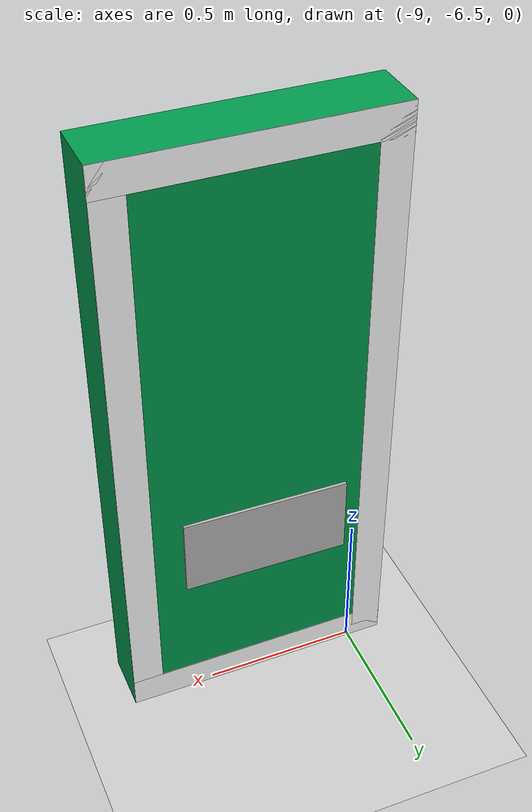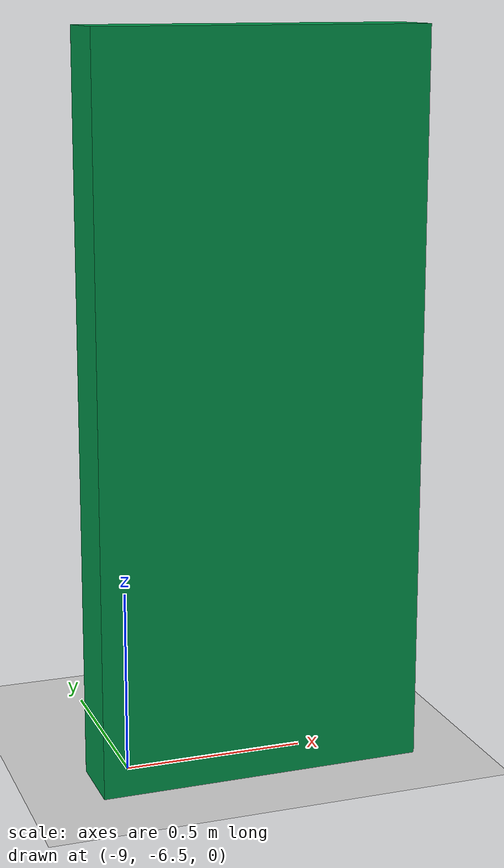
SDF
<sdf version="1.7">
 <world name="default">
  <model name="ground_plane">
   <static>1</static>
   <link name="link">
    <collision name="collision">
     <geometry><plane><normal>0 0 1</normal><size>100 100</size></plane></geometry>
     <surface><friction><ode><mu>100</mu><mu2>50</mu2></ode></friction></surface>
    </collision>
    <visual name="visual">
     <cast_shadows>0</cast_shadows>
     <geometry><plane><normal>0 0 1</normal><size>100 100</size></plane></geometry>
     <material>
      <script><uri>file://media/materials/scripts/gazebo.material</uri><name>Gazebo/Grey</name></script>
     </material>
    </visual>
   </link>
  </model>
  <model name="fire_exit_green">
   <link name="link_1">
    <pose>0 0 0.993 0 -0 0</pose>
    <visual name="visual">
     <geometry><box><size>0.891572 0.186765 1.98613</size></box></geometry>
     <material>
      <ambient>0 0.6 0.3 1</ambient>
      <diffuse>0 0.6 0.3 1</diffuse>
      <specular>0.2 0.2 0.2 1</specular>
     </material>
    </visual>
    <visual name="border_left">
     <pose>0.395 0.094 0 0 -0 0</pose>
     <geometry><box><size>0.1 0.002 1.986</size></box></geometry>
     <material><ambient>1 1 1 1</ambient><diffuse>1 1 1 1</diffuse></material>
    </visual>
    <visual name="border_right">
     <pose>-0.395 0.094 0 0 -0 0</pose>
     <geometry><box><size>0.1 0.002 1.986</size></box></geometry>
     <material><ambient>1 1 1 1</ambient><diffuse>1 1 1 1</diffuse></material>
    </visual>
    <visual name="border_top">
     <pose>0 0.094 0.943 0 -0 0</pose>
     <geometry><box><size>0.891 0.002 0.1</size></box></geometry>
     <material><ambient>1 1 1 1</ambient><diffuse>1 1 1 1</diffuse></material>
    </visual>
    <visual name="border_bottom">
     <pose>0 0.094 -0.943 0 -0 0</pose>
     <geometry><box><size>0.891 0.002 0.1</size></box></geometry>
     <material><ambient>1 1 1 1</ambient><diffuse>1 1 1 1</diffuse></material>
    </visual>
    <collision name="collision"><geometry><box><size>0.891572 0.186765 1.98613</size></box></geometry></collision>
    <inertial>
     <inertia><ixx>1</ixx><ixy>0</ixy><ixz>0</ixz><iyy>1</iyy><iyz>0</iyz><izz>1</izz></inertia>
     <mass>1</mass>
    </inertial>
   </link>
   <static>0</static>
   <pose>-8.66803 -6.58101 0.005065 0 1e-06 0.004837</pose>
  </model>
  <model name="poster">
   <static>1</static>
   <link name="link_0">
    <visual name="visual">
     <geometry><box><size>0.01 0.537989 0.266526</size></box></geometry>
     <material>
      <script>
       <uri>model://poster/materials/scripts</uri>
       <uri>model://poster/materials/textures</uri>
       <name>FireExit/Label</name>
      </script>
     </material>
    </visual>
    <collision name="collision"><geometry><box><size>0.01 0.537989 0.266526</size></box></geometry></collision>
   </link>
   <pose>-8.68921 -6.47973 0.606253 0 -0 1.55876</pose>
  </model>
 </world>
</sdf>
